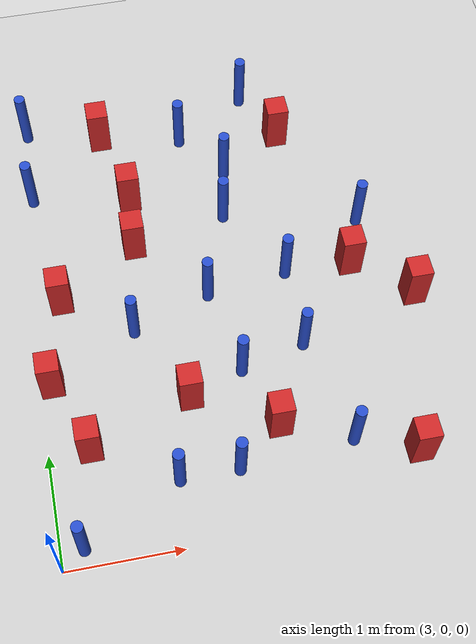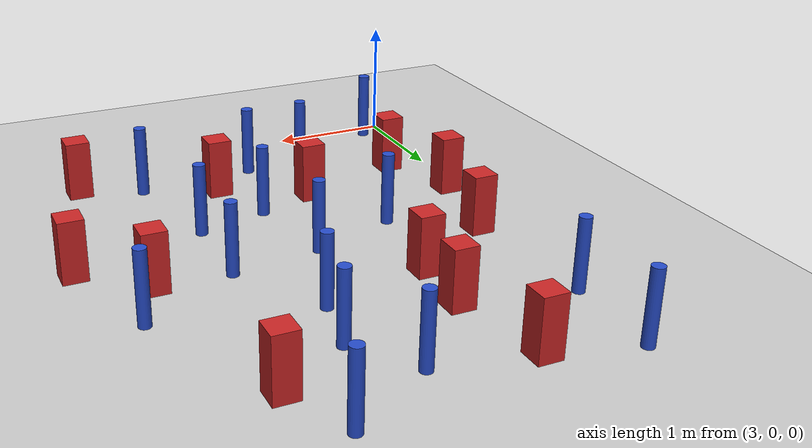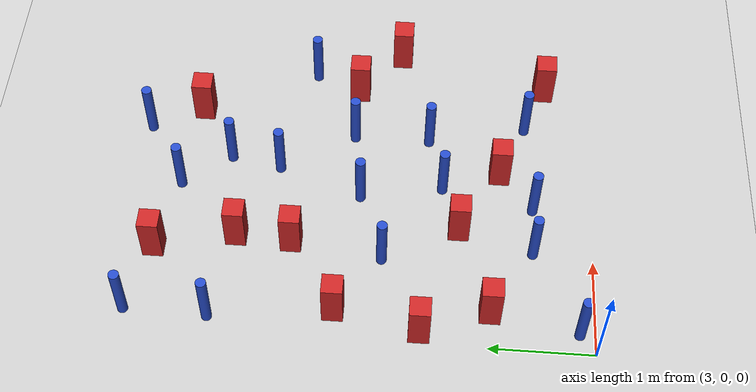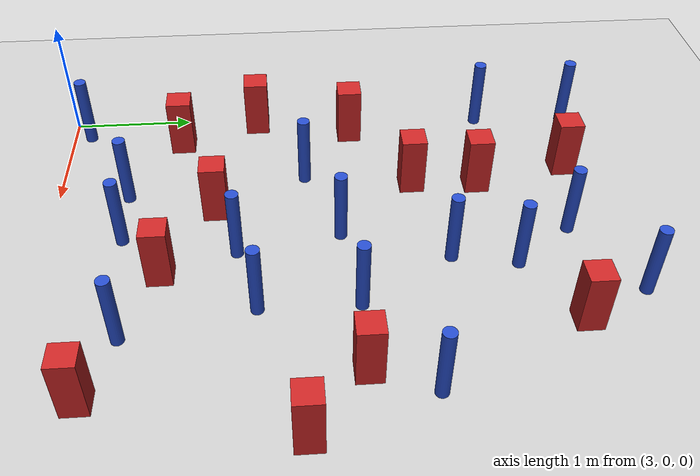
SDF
<sdf version="1.6">
 <world name="default">
  <model name="ground_plane">
   <static>1</static>
   <link name="link">
    <collision name="collision">
     <geometry><plane><normal>0 0 1</normal><size>100 100</size></plane></geometry>
     <surface><friction><ode><mu>100</mu><mu2>50</mu2></ode></friction></surface>
    </collision>
    <visual name="visual">
     <cast_shadows>0</cast_shadows>
     <geometry><plane><normal>0 0 1</normal><size>100 100</size></plane></geometry>
     <material>
      <ambient>1.0 1.0 1.0 1.0</ambient>
      <diffuse>0.8 0.8 0.8 1.0</diffuse>
      <specular>0.01 0.01 0.01 1.000000</specular>
     </material>
    </visual>
   </link>
  </model>
  <model name="square_post_obstacle2">
   <static>true</static>
   <pose>4.062146996 3.44321941891 8.22691968438e-08 7.2212513382e-06 -7.54495500217e-07 2.29674213826e-05</pose>
   <link name="link">
    <pose>0 0 0.25 0 -0 0</pose>
    <inertial>
     <mass>100</mass>
     <inertia>
      <ixx>0.166667</ixx>
      <ixy>0</ixy>
      <ixz>0</ixz>
      <iyy>0.166667</iyy>
      <iyz>0</iyz>
      <izz>0.166667</izz>
     </inertia>
    </inertial>
    <collision name="collision"><geometry><box><size>.2 .2 .5</size></box></geometry></collision>
    <visual name="visual">
     <geometry><box><size>.2 .2 .5</size></box></geometry>
     <material>
      <script><name>Gazebo/Red</name><uri>file://media/materials/scripts/gazebo.material</uri></script>
     </material>
    </visual>
   </link>
  </model>
  <model name="pole_obstacle13">
   <static>true</static>
   <pose>3.18473489793 4.40820543616 2.88873142074e-08 -9.90536689859e-09 4.60219948989e-07 -1.20965994961e-07</pose>
   <link name="link">
    <pose>0 0 0.3 0 -0 0</pose>
    <inertial>
     <mass>1</mass>
     <inertia><ixx>0.145833</ixx><ixy>0</ixy><ixz>0</ixz><iyy>0.145833</iyy><iyz>0</iyz><izz>0.125</izz></inertia>
    </inertial>
    <collision name="collision">
     <geometry><cylinder><radius>0.05</radius><length>.6</length></cylinder></geometry>
    </collision>
    <visual name="visual">
     <geometry><cylinder><radius>0.05</radius><length>.6</length></cylinder></geometry>
     <material>
      <script><name>Gazebo/Blue</name><uri>file://media/materials/scripts/gazebo.material</uri></script>
     </material>
    </visual>
   </link>
  </model>
  <model name="pole_obstacle32">
   <static>true</static>
   <pose>3.15653925007 3.61359111328 2.88873142074e-08 -9.90536690232e-09 4.6021994898e-07 -1.20965994968e-07</pose>
   <link name="link">
    <pose>0 0 0.3 0 -0 0</pose>
    <inertial>
     <mass>1</mass>
     <inertia><ixx>0.145833</ixx><ixy>0</ixy><ixz>0</ixz><iyy>0.145833</iyy><iyz>0</iyz><izz>0.125</izz></inertia>
    </inertial>
    <collision name="collision">
     <geometry><cylinder><radius>0.05</radius><length>.6</length></cylinder></geometry>
    </collision>
    <visual name="visual">
     <geometry><cylinder><radius>0.05</radius><length>.6</length></cylinder></geometry>
     <material>
      <script><name>Gazebo/Blue</name><uri>file://media/materials/scripts/gazebo.material</uri></script>
     </material>
    </visual>
   </link>
  </model>
  <model name="square_post_obstacle36">
   <static>true</static>
   <pose>5.59452878145 3.95318610439 8.22691968438e-08 7.2212513382e-06 -7.54495500217e-07 2.29674213826e-05</pose>
   <link name="link">
    <pose>0 0 0.25 0 -0 0</pose>
    <inertial>
     <mass>100</mass>
     <inertia>
      <ixx>0.166667</ixx>
      <ixy>0</ixy>
      <ixz>0</ixz>
      <iyy>0.166667</iyy>
      <iyz>0</iyz>
      <izz>0.166667</izz>
     </inertia>
    </inertial>
    <collision name="collision"><geometry><box><size>.2 .2 .5</size></box></geometry></collision>
    <visual name="visual">
     <geometry><box><size>.2 .2 .5</size></box></geometry>
     <material>
      <script><name>Gazebo/Red</name><uri>file://media/materials/scripts/gazebo.material</uri></script>
     </material>
    </visual>
   </link>
  </model>
  <model name="pole_obstacle55">
   <static>true</static>
   <pose>4.05016667078 0.575845721935 2.88873142074e-08 -9.90536689837e-09 4.60219948989e-07 -1.2096599496e-07</pose>
   <link name="link">
    <pose>0 0 0.3 0 -0 0</pose>
    <inertial>
     <mass>1</mass>
     <inertia><ixx>0.145833</ixx><ixy>0</ixy><ixz>0</ixz><iyy>0.145833</iyy><iyz>0</iyz><izz>0.125</izz></inertia>
    </inertial>
    <collision name="collision">
     <geometry><cylinder><radius>0.05</radius><length>.6</length></cylinder></geometry>
    </collision>
    <visual name="visual">
     <geometry><cylinder><radius>0.05</radius><length>.6</length></cylinder></geometry>
     <material>
      <script><name>Gazebo/Blue</name><uri>file://media/materials/scripts/gazebo.material</uri></script>
     </material>
    </visual>
   </link>
  </model>
  <model name="pole_obstacle58">
   <static>true</static>
   <pose>4.65480902449 4.06893869711 2.88873142074e-08 -9.90536690842e-09 4.60219948965e-07 -1.20965994976e-07</pose>
   <link name="link">
    <pose>0 0 0.3 0 -0 0</pose>
    <inertial>
     <mass>1</mass>
     <inertia><ixx>0.145833</ixx><ixy>0</ixy><ixz>0</ixz><iyy>0.145833</iyy><iyz>0</iyz><izz>0.125</izz></inertia>
    </inertial>
    <collision name="collision">
     <geometry><cylinder><radius>0.05</radius><length>.6</length></cylinder></geometry>
    </collision>
    <visual name="visual">
     <geometry><cylinder><radius>0.05</radius><length>.6</length></cylinder></geometry>
     <material>
      <script><name>Gazebo/Blue</name><uri>file://media/materials/scripts/gazebo.material</uri></script>
     </material>
    </visual>
   </link>
  </model>
  <model name="square_post_obstacle47">
   <static>true</static>
   <pose>4.26561126437 1.29651619205 8.22691968438e-08 7.2212513382e-06 -7.54495500217e-07 2.29674213826e-05</pose>
   <link name="link">
    <pose>0 0 0.25 0 -0 0</pose>
    <inertial>
     <mass>100</mass>
     <inertia>
      <ixx>0.166667</ixx>
      <ixy>0</ixy>
      <ixz>0</ixz>
      <iyy>0.166667</iyy>
      <iyz>0</iyz>
      <izz>0.166667</izz>
     </inertia>
    </inertial>
    <collision name="collision"><geometry><box><size>.2 .2 .5</size></box></geometry></collision>
    <visual name="visual">
     <geometry><box><size>.2 .2 .5</size></box></geometry>
     <material>
      <script><name>Gazebo/Red</name><uri>file://media/materials/scripts/gazebo.material</uri></script>
     </material>
    </visual>
   </link>
  </model>
  <model name="pole_obstacle71">
   <static>true</static>
   <pose>5.55527071689 0.659040202068 2.88873142074e-08 -9.90536689837e-09 4.60219948989e-07 -1.2096599496e-07</pose>
   <link name="link">
    <pose>0 0 0.3 0 -0 0</pose>
    <inertial>
     <mass>1</mass>
     <inertia><ixx>0.145833</ixx><ixy>0</ixy><ixz>0</ixz><iyy>0.145833</iyy><iyz>0</iyz><izz>0.125</izz></inertia>
    </inertial>
    <collision name="collision">
     <geometry><cylinder><radius>0.05</radius><length>.6</length></cylinder></geometry>
    </collision>
    <visual name="visual">
     <geometry><cylinder><radius>0.05</radius><length>.6</length></cylinder></geometry>
     <material>
      <script><name>Gazebo/Blue</name><uri>file://media/materials/scripts/gazebo.material</uri></script>
     </material>
    </visual>
   </link>
  </model>
  <model name="pole_obstacle79">
   <static>true</static>
   <pose>4.90866591619 3.10098282916 2.88873142074e-08 -9.90536690245e-09 4.6021994898e-07 -1.20965994966e-07</pose>
   <link name="link">
    <pose>0 0 0.3 0 -0 0</pose>
    <inertial>
     <mass>1</mass>
     <inertia><ixx>0.145833</ixx><ixy>0</ixy><ixz>0</ixz><iyy>0.145833</iyy><iyz>0</iyz><izz>0.125</izz></inertia>
    </inertial>
    <collision name="collision">
     <geometry><cylinder><radius>0.05</radius><length>.6</length></cylinder></geometry>
    </collision>
    <visual name="visual">
     <geometry><cylinder><radius>0.05</radius><length>.6</length></cylinder></geometry>
     <material>
      <script><name>Gazebo/Blue</name><uri>file://media/materials/scripts/gazebo.material</uri></script>
     </material>
    </visual>
   </link>
  </model>
  <model name="square_post_obstacle83">
   <static>true</static>
   <pose>3.28955789506 2.44246129395 8.22691968438e-08 7.2212513382e-06 -7.54495500217e-07 2.29674213826e-05</pose>
   <link name="link">
    <pose>0 0 0.25 0 -0 0</pose>
    <inertial>
     <mass>100</mass>
     <inertia>
      <ixx>0.166667</ixx>
      <ixy>0</ixy>
      <ixz>0</ixz>
      <iyy>0.166667</iyy>
      <iyz>0</iyz>
      <izz>0.166667</izz>
     </inertia>
    </inertial>
    <collision name="collision"><geometry><box><size>.2 .2 .5</size></box></geometry></collision>
    <visual name="visual">
     <geometry><box><size>.2 .2 .5</size></box></geometry>
     <material>
      <script><name>Gazebo/Red</name><uri>file://media/materials/scripts/gazebo.material</uri></script>
     </material>
    </visual>
   </link>
  </model>
  <model name="square_post_obstacle88">
   <static>true</static>
   <pose>3.11283507683 1.63237849577 8.22691968438e-08 7.2212513382e-06 -7.54495500217e-07 2.29674213826e-05</pose>
   <link name="link">
    <pose>0 0 0.25 0 -0 0</pose>
    <inertial>
     <mass>100</mass>
     <inertia>
      <ixx>0.166667</ixx>
      <ixy>0</ixy>
      <ixz>0</ixz>
      <iyy>0.166667</iyy>
      <iyz>0</iyz>
      <izz>0.166667</izz>
     </inertia>
    </inertial>
    <collision name="collision"><geometry><box><size>.2 .2 .5</size></box></geometry></collision>
    <visual name="visual">
     <geometry><box><size>.2 .2 .5</size></box></geometry>
     <material>
      <script><name>Gazebo/Red</name><uri>file://media/materials/scripts/gazebo.material</uri></script>
     </material>
    </visual>
   </link>
  </model>
  <model name="pole_obstacle120">
   <static>true</static>
   <pose>4.75560475428 1.47030281342 2.88873142074e-08 -9.90536689445e-09 4.60219948999e-07 -1.20965994956e-07</pose>
   <link name="link">
    <pose>0 0 0.3 0 -0 0</pose>
    <inertial>
     <mass>1</mass>
     <inertia><ixx>0.145833</ixx><ixy>0</ixy><ixz>0</ixz><iyy>0.145833</iyy><iyz>0</iyz><izz>0.125</izz></inertia>
    </inertial>
    <collision name="collision">
     <geometry><cylinder><radius>0.05</radius><length>.6</length></cylinder></geometry>
    </collision>
    <visual name="visual">
     <geometry><cylinder><radius>0.05</radius><length>.6</length></cylinder></geometry>
     <material>
      <script><name>Gazebo/Blue</name><uri>file://media/materials/scripts/gazebo.material</uri></script>
     </material>
    </visual>
   </link>
  </model>
  <model name="pole_obstacle121">
   <static>true</static>
   <pose>5.34711265626 2.37785144688 2.88873142074e-08 -9.90536690245e-09 4.6021994898e-07 -1.20965994966e-07</pose>
   <link name="link">
    <pose>0 0 0.3 0 -0 0</pose>
    <inertial>
     <mass>1</mass>
     <inertia><ixx>0.145833</ixx><ixy>0</ixy><ixz>0</ixz><iyy>0.145833</iyy><iyz>0</iyz><izz>0.125</izz></inertia>
    </inertial>
    <collision name="collision">
     <geometry><cylinder><radius>0.05</radius><length>.6</length></cylinder></geometry>
    </collision>
    <visual name="visual">
     <geometry><cylinder><radius>0.05</radius><length>.6</length></cylinder></geometry>
     <material>
      <script><name>Gazebo/Blue</name><uri>file://media/materials/scripts/gazebo.material</uri></script>
     </material>
    </visual>
   </link>
  </model>
  <model name="square_post_obstacle121">
   <static>true</static>
   <pose>4.95970962082 0.907179144384 8.22691968438e-08 7.2212513382e-06 -7.54495500217e-07 2.29674213826e-05</pose>
   <link name="link">
    <pose>0 0 0.25 0 -0 0</pose>
    <inertial>
     <mass>100</mass>
     <inertia>
      <ixx>0.166667</ixx>
      <ixy>0</ixy>
      <ixz>0</ixz>
      <iyy>0.166667</iyy>
      <iyz>0</iyz>
      <izz>0.166667</izz>
     </inertia>
    </inertial>
    <collision name="collision"><geometry><box><size>.2 .2 .5</size></box></geometry></collision>
    <visual name="visual">
     <geometry><box><size>.2 .2 .5</size></box></geometry>
     <material>
      <script><name>Gazebo/Red</name><uri>file://media/materials/scripts/gazebo.material</uri></script>
     </material>
    </visual>
   </link>
  </model>
  <model name="pole_obstacle131">
   <static>true</static>
   <pose>3.89083848318 2.02515649781 2.88873142074e-08 -9.90536689662e-09 4.60219948993e-07 -1.20965994957e-07</pose>
   <link name="link">
    <pose>0 0 0.3 0 -0 0</pose>
    <inertial>
     <mass>1</mass>
     <inertia><ixx>0.145833</ixx><ixy>0</ixy><ixz>0</ixz><iyy>0.145833</iyy><iyz>0</iyz><izz>0.125</izz></inertia>
    </inertial>
    <collision name="collision">
     <geometry><cylinder><radius>0.05</radius><length>.6</length></cylinder></geometry>
    </collision>
    <visual name="visual">
     <geometry><cylinder><radius>0.05</radius><length>.6</length></cylinder></geometry>
     <material>
      <script><name>Gazebo/Blue</name><uri>file://media/materials/scripts/gazebo.material</uri></script>
     </material>
    </visual>
   </link>
  </model>
  <model name="pole_obstacle134">
   <static>true</static>
   <pose>5.34154555311 1.62409567526 2.88873142074e-08 -9.90536689445e-09 4.60219948999e-07 -1.20965994956e-07</pose>
   <link name="link">
    <pose>0 0 0.3 0 -0 0</pose>
    <inertial>
     <mass>1</mass>
     <inertia><ixx>0.145833</ixx><ixy>0</ixy><ixz>0</ixz><iyy>0.145833</iyy><iyz>0</iyz><izz>0.125</izz></inertia>
    </inertial>
    <collision name="collision">
     <geometry><cylinder><radius>0.05</radius><length>.6</length></cylinder></geometry>
    </collision>
    <visual name="visual">
     <geometry><cylinder><radius>0.05</radius><length>.6</length></cylinder></geometry>
     <material>
      <script><name>Gazebo/Blue</name><uri>file://media/materials/scripts/gazebo.material</uri></script>
     </material>
    </visual>
   </link>
  </model>
  <model name="pole_obstacle145">
   <static>true</static>
   <pose>4.60626664698 2.27681054039 2.88873142074e-08 -9.90536690245e-09 4.6021994898e-07 -1.20965994966e-07</pose>
   <link name="link">
    <pose>0 0 0.3 0 -0 0</pose>
    <inertial>
     <mass>1</mass>
     <inertia><ixx>0.145833</ixx><ixy>0</ixy><ixz>0</ixz><iyy>0.145833</iyy><iyz>0</iyz><izz>0.125</izz></inertia>
    </inertial>
    <collision name="collision">
     <geometry><cylinder><radius>0.05</radius><length>.6</length></cylinder></geometry>
    </collision>
    <visual name="visual">
     <geometry><cylinder><radius>0.05</radius><length>.6</length></cylinder></geometry>
     <material>
      <script><name>Gazebo/Blue</name><uri>file://media/materials/scripts/gazebo.material</uri></script>
     </material>
    </visual>
   </link>
  </model>
  <model name="square_post_obstacle144">
   <static>true</static>
   <pose>3.35886243863 0.981629406882 8.22691968438e-08 7.2212513382e-06 -7.54495500217e-07 2.29674213826e-05</pose>
   <link name="link">
    <pose>0 0 0.25 0 -0 0</pose>
    <inertial>
     <mass>100</mass>
     <inertia>
      <ixx>0.166667</ixx>
      <ixy>0</ixy>
      <ixz>0</ixz>
      <iyy>0.166667</iyy>
      <iyz>0</iyz>
      <izz>0.166667</izz>
     </inertia>
    </inertial>
    <collision name="collision"><geometry><box><size>.2 .2 .5</size></box></geometry></collision>
    <visual name="visual">
     <geometry><box><size>.2 .2 .5</size></box></geometry>
     <material>
      <script><name>Gazebo/Red</name><uri>file://media/materials/scripts/gazebo.material</uri></script>
     </material>
    </visual>
   </link>
  </model>
  <model name="square_post_obstacle145">
   <static>true</static>
   <pose>5.94182676036 2.36542448707 8.22691968438e-08 7.2212513382e-06 -7.54495500217e-07 2.29674213826e-05</pose>
   <link name="link">
    <pose>0 0 0.25 0 -0 0</pose>
    <inertial>
     <mass>100</mass>
     <inertia>
      <ixx>0.166667</ixx>
      <ixy>0</ixy>
      <ixz>0</ixz>
      <iyy>0.166667</iyy>
      <iyz>0</iyz>
      <izz>0.166667</izz>
     </inertia>
    </inertial>
    <collision name="collision"><geometry><box><size>.2 .2 .5</size></box></geometry></collision>
    <visual name="visual">
     <geometry><box><size>.2 .2 .5</size></box></geometry>
     <material>
      <script><name>Gazebo/Red</name><uri>file://media/materials/scripts/gazebo.material</uri></script>
     </material>
    </visual>
   </link>
  </model>
  <model name="pole_obstacle163">
   <static>true</static>
   <pose>6.13854482344 2.82607821008 2.88873142074e-08 -9.90536690245e-09 4.6021994898e-07 -1.20965994966e-07</pose>
   <link name="link">
    <pose>0 0 0.3 0 -0 0</pose>
    <inertial>
     <mass>1</mass>
     <inertia><ixx>0.145833</ixx><ixy>0</ixy><ixz>0</ixz><iyy>0.145833</iyy><iyz>0</iyz><izz>0.125</izz></inertia>
    </inertial>
    <collision name="collision">
     <geometry><cylinder><radius>0.05</radius><length>.6</length></cylinder></geometry>
    </collision>
    <visual name="visual">
     <geometry><cylinder><radius>0.05</radius><length>.6</length></cylinder></geometry>
     <material>
      <script><name>Gazebo/Blue</name><uri>file://media/materials/scripts/gazebo.material</uri></script>
     </material>
    </visual>
   </link>
  </model>
  <model name="pole_obstacle167">
   <static>true</static>
   <pose>4.55910694301 0.576673541064 2.88873142074e-08 -9.90536689837e-09 4.60219948989e-07 -1.2096599496e-07</pose>
   <link name="link">
    <pose>0 0 0.3 0 -0 0</pose>
    <inertial>
     <mass>1</mass>
     <inertia><ixx>0.145833</ixx><ixy>0</ixy><ixz>0</ixz><iyy>0.145833</iyy><iyz>0</iyz><izz>0.125</izz></inertia>
    </inertial>
    <collision name="collision">
     <geometry><cylinder><radius>0.05</radius><length>.6</length></cylinder></geometry>
    </collision>
    <visual name="visual">
     <geometry><cylinder><radius>0.05</radius><length>.6</length></cylinder></geometry>
     <material>
      <script><name>Gazebo/Blue</name><uri>file://media/materials/scripts/gazebo.material</uri></script>
     </material>
    </visual>
   </link>
  </model>
  <model name="square_post_obstacle180">
   <static>true</static>
   <pose>3.8848983444 4.22326085638 8.22691968438e-08 7.2212513382e-06 -7.54495500217e-07 2.29674213826e-05</pose>
   <link name="link">
    <pose>0 0 0.25 0 -0 0</pose>
    <inertial>
     <mass>100</mass>
     <inertia>
      <ixx>0.166667</ixx>
      <ixy>0</ixy>
      <ixz>0</ixz>
      <iyy>0.166667</iyy>
      <iyz>0</iyz>
      <izz>0.166667</izz>
     </inertia>
    </inertial>
    <collision name="collision"><geometry><box><size>.2 .2 .5</size></box></geometry></collision>
    <visual name="visual">
     <geometry><box><size>.2 .2 .5</size></box></geometry>
     <material>
      <script><name>Gazebo/Red</name><uri>file://media/materials/scripts/gazebo.material</uri></script>
     </material>
    </visual>
   </link>
  </model>
  <model name="square_post_obstacle205">
   <static>true</static>
   <pose>6.43681997224 1.94491494396 8.22691968438e-08 7.2212513382e-06 -7.54495500217e-07 2.29674213826e-05</pose>
   <link name="link">
    <pose>0 0 0.25 0 -0 0</pose>
    <inertial>
     <mass>100</mass>
     <inertia>
      <ixx>0.166667</ixx>
      <ixy>0</ixy>
      <ixz>0</ixz>
      <iyy>0.166667</iyy>
      <iyz>0</iyz>
      <izz>0.166667</izz>
     </inertia>
    </inertial>
    <collision name="collision"><geometry><box><size>.2 .2 .5</size></box></geometry></collision>
    <visual name="visual">
     <geometry><box><size>.2 .2 .5</size></box></geometry>
     <material>
      <script><name>Gazebo/Red</name><uri>file://media/materials/scripts/gazebo.material</uri></script>
     </material>
    </visual>
   </link>
  </model>
  <model name="pole_obstacle195">
   <static>true</static>
   <pose>5.34209408805 4.47072459554 2.88873142074e-08 -9.90536690842e-09 4.60219948965e-07 -1.20965994976e-07</pose>
   <link name="link">
    <pose>0 0 0.3 0 -0 0</pose>
    <inertial>
     <mass>1</mass>
     <inertia><ixx>0.145833</ixx><ixy>0</ixy><ixz>0</ixz><iyy>0.145833</iyy><iyz>0</iyz><izz>0.125</izz></inertia>
    </inertial>
    <collision name="collision">
     <geometry><cylinder><radius>0.05</radius><length>.6</length></cylinder></geometry>
    </collision>
    <visual name="visual">
     <geometry><cylinder><radius>0.05</radius><length>.6</length></cylinder></geometry>
     <material>
      <script><name>Gazebo/Blue</name><uri>file://media/materials/scripts/gazebo.material</uri></script>
     </material>
    </visual>
   </link>
  </model>
  <model name="pole_obstacle203">
   <static>true</static>
   <pose>5.01134573544 3.59938887492 2.88873142074e-08 -9.90536690245e-09 4.6021994898e-07 -1.20965994966e-07</pose>
   <link name="link">
    <pose>0 0 0.3 0 -0 0</pose>
    <inertial>
     <mass>1</mass>
     <inertia><ixx>0.145833</ixx><ixy>0</ixy><ixz>0</ixz><iyy>0.145833</iyy><iyz>0</iyz><izz>0.125</izz></inertia>
    </inertial>
    <collision name="collision">
     <geometry><cylinder><radius>0.05</radius><length>.6</length></cylinder></geometry>
    </collision>
    <visual name="visual">
     <geometry><cylinder><radius>0.05</radius><length>.6</length></cylinder></geometry>
     <material>
      <script><name>Gazebo/Blue</name><uri>file://media/materials/scripts/gazebo.material</uri></script>
     </material>
    </visual>
   </link>
  </model>
  <model name="pole_obstacle204">
   <static>true</static>
   <pose>3.19467457638 0.145615036291 2.88873142074e-08 -9.90536689314e-09 4.60219949002e-07 -1.20965994953e-07</pose>
   <link name="link">
    <pose>0 0 0.3 0 -0 0</pose>
    <inertial>
     <mass>1</mass>
     <inertia><ixx>0.145833</ixx><ixy>0</ixy><ixz>0</ixz><iyy>0.145833</iyy><iyz>0</iyz><izz>0.125</izz></inertia>
    </inertial>
    <collision name="collision">
     <geometry><cylinder><radius>0.05</radius><length>.6</length></cylinder></geometry>
    </collision>
    <visual name="visual">
     <geometry><cylinder><radius>0.05</radius><length>.6</length></cylinder></geometry>
     <material>
      <script><name>Gazebo/Blue</name><uri>file://media/materials/scripts/gazebo.material</uri></script>
     </material>
    </visual>
   </link>
  </model>
  <model name="square_post_obstacle210">
   <static>true</static>
   <pose>6.06859105004 0.464624207577 8.22691968438e-08 7.2212513382e-06 -7.54495500217e-07 2.29674213826e-05</pose>
   <link name="link">
    <pose>0 0 0.25 0 -0 0</pose>
    <inertial>
     <mass>100</mass>
     <inertia>
      <ixx>0.166667</ixx>
      <ixy>0</ixy>
      <ixz>0</ixz>
      <iyy>0.166667</iyy>
      <iyz>0</iyz>
      <izz>0.166667</izz>
     </inertia>
    </inertial>
    <collision name="collision"><geometry><box><size>.2 .2 .5</size></box></geometry></collision>
    <visual name="visual">
     <geometry><box><size>.2 .2 .5</size></box></geometry>
     <material>
      <script><name>Gazebo/Red</name><uri>file://media/materials/scripts/gazebo.material</uri></script>
     </material>
    </visual>
   </link>
  </model>
  <model name="square_post_obstacle228">
   <static>true</static>
   <pose>4.0241496609 2.90635134047 8.22691968438e-08 7.2212513382e-06 -7.54495500217e-07 2.29674213826e-05</pose>
   <link name="link">
    <pose>0 0 0.25 0 -0 0</pose>
    <inertial>
     <mass>100</mass>
     <inertia>
      <ixx>0.166667</ixx>
      <ixy>0</ixy>
      <ixz>0</ixz>
      <iyy>0.166667</iyy>
      <iyz>0</iyz>
      <izz>0.166667</izz>
     </inertia>
    </inertial>
    <collision name="collision"><geometry><box><size>.2 .2 .5</size></box></geometry></collision>
    <visual name="visual">
     <geometry><box><size>.2 .2 .5</size></box></geometry>
     <material>
      <script><name>Gazebo/Red</name><uri>file://media/materials/scripts/gazebo.material</uri></script>
     </material>
    </visual>
   </link>
  </model>
 </world>
</sdf>
